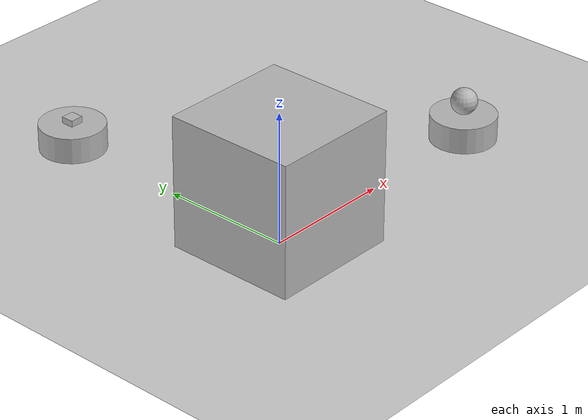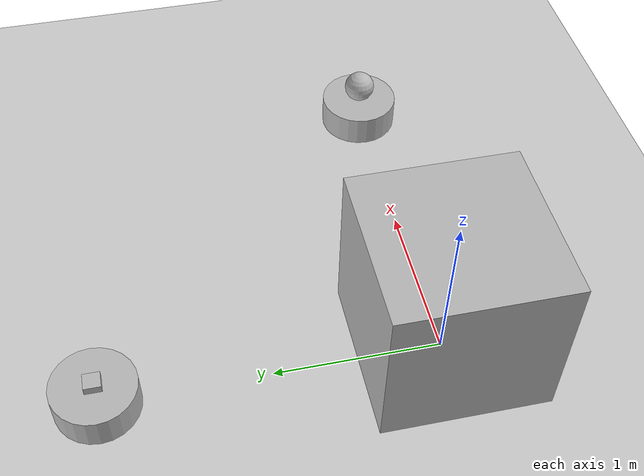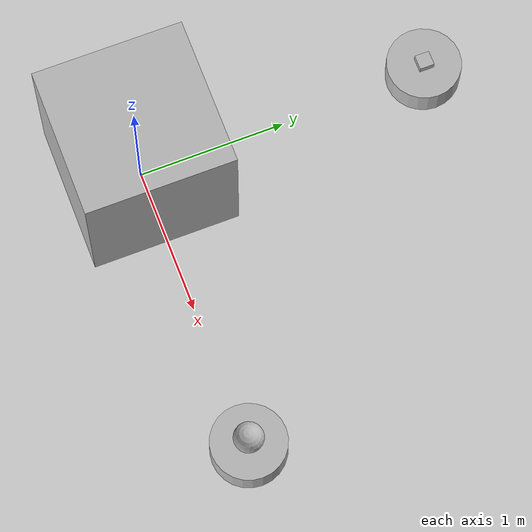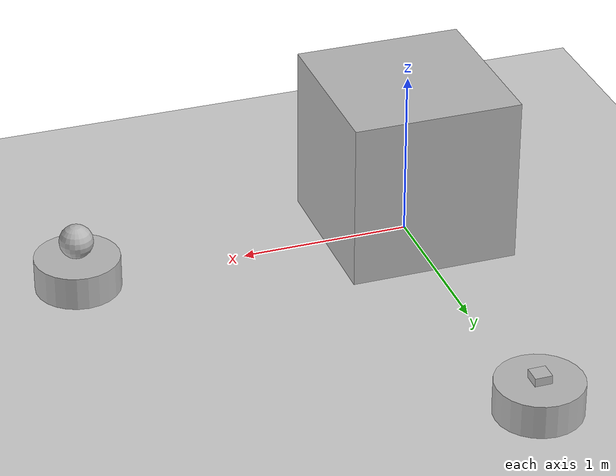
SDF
<!-- /* Copyright 2019 The MathWorks, Inc. -->
<?xml version="1.0"?>
<sdf version="1.4">
  <world name="default">
    <include>
      <uri>model://ground_plane</uri>
    </include>

    <include>
      <uri>model://sun</uri>
    </include>

   <model name ='unit_box'>
    <pose>0.0 0.0 0.5 0.0 0.0 0.0</pose>
    <link name ='link'>
      <pose>0.0 0.0 0.0 0.0 0.0 0.0</pose>
      <collision name ='collision'>
        <geometry>
          <box><size>1 1 1</size></box>
        </geometry>
      </collision>
      <visual name ='visual'>
        <geometry>
          <box><size>1 1 1</size></box>
        </geometry>
      </visual>
    </link>
   </model>

   <model name = "2_body">

    <pose>0 2 0 0 0 0</pose>

    <link name = "base">
      <pose>0 0 0.1 0 0 0</pose>
      <visual name = "visual">
        <geometry>
          <cylinder>
            <radius>0.25</radius>
            <length>0.2</length>
          </cylinder>
        </geometry>
      </visual>
    </link>

    <link name = "follower">
      <pose>0 0 0.2 0 0 0</pose>
      <visual name = "visual">
        <geometry>
          <box>
            <size>0.1 0.1 0.1</size>
          </box>
        </geometry>
      </visual>
    </link>

    <joint name="base_joint" type ="fixed">
      <pose>0 2 0 0 0 0</pose>
      <parent>world</parent>
      <child>base</child>
    </joint>

    <joint name="follower_joint" type ="revolute">
      <pose>0 0 0 0 0 0</pose>
      <parent>base</parent>
      <child>follower</child>
      <axis>
        <xyz>0 0 1</xyz>
      </axis>
    </joint>
  </model>

  <model name = "3_body">

    <pose>2 0 0 0 0 0</pose>

    <link name = "base">
      <pose>0 0 0.1 0 0 0</pose>
      <visual name = "visual">
        <geometry>
          <cylinder>
            <radius>0.25</radius>
            <length>0.2</length>
          </cylinder>
        </geometry>
      </visual>
    </link>

    <link name = "follower">
      <pose>0 0 0.3 0 0 0</pose>
      <visual name = "visual">
        <geometry>
            <sphere>
              <radius>0.1</radius>
            </sphere>
        </geometry>
      </visual>
    </link>

    <joint name="base_joint" type ="fixed">
      <pose>0 2 0 0 0 0</pose>
      <parent>world</parent>
      <child>base</child>
    </joint>

    <joint name='follower_joint' type='revolute2'>
        <parent>base</parent>
        <child>follower</child>
        <axis>
          <xyz>0 1 0</xyz>
        </axis>
        <axis>
          <xyz>1 0 0</xyz>
        </axis>
    </joint>

  </model>

  <gravity>0 0 0</gravity>

  </world>
</sdf>
